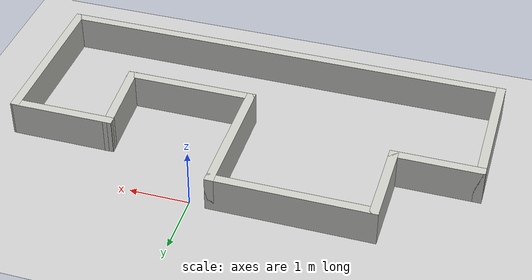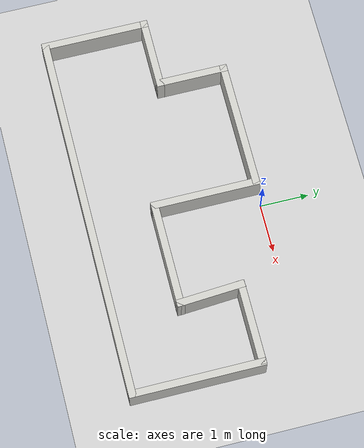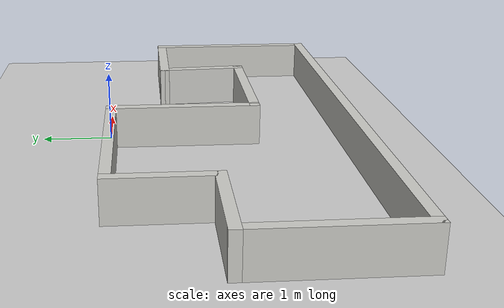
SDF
<sdf version="1.7">
 <world name="default">
  <light name="sun" type="directional">
   <pose>0 0 10 0 -0 0</pose>
   <diffuse>0.8 0.8 0.8 1</diffuse>
   <specular>0.2 0.2 0.2 1</specular>
   <attenuation>
    <range>1000</range>
    <constant>0.9</constant>
    <linear>0.01</linear>
    <quadratic>0.001</quadratic>
   </attenuation>
   <direction>-0.5 0.1 -0.9</direction>
   <spot><inner_angle>0</inner_angle><outer_angle>0</outer_angle><falloff>0</falloff></spot>
  </light>
  <model name="ground_plane">
   <static>1</static>
   <link name="link">
    <collision name="collision">
     <geometry><plane><normal>0 0 1</normal><size>100 100</size></plane></geometry>
     <surface>
      <contact><collide_bitmask>65535</collide_bitmask></contact>
      <friction><ode><mu>100</mu><mu2>50</mu2></ode></friction>
     </surface>
    </collision>
    <visual name="visual">
     <cast_shadows>0</cast_shadows>
     <geometry><plane><normal>0 0 1</normal><size>100 100</size></plane></geometry>
     <material>
      <script><uri>file://media/materials/scripts/gazebo.material</uri><name>Gazebo/Grey</name></script>
     </material>
    </visual>
   </link>
  </model>
  <gravity>0 0 -9.8</gravity>
  <magnetic_field>6e-06 2.3e-05 -4.2e-05</magnetic_field>
  <atmosphere type="adiabatic"/>
  <physics type="ode">
   <max_step_size>0.001</max_step_size>
   <real_time_factor>1</real_time_factor>
   <real_time_update_rate>1000</real_time_update_rate>
  </physics>
  <scene><ambient>0.4 0.4 0.4 1</ambient><background>0.7 0.7 0.7 1</background><shadows>1</shadows></scene>
  <audio><device>default</device></audio>
  <spherical_coordinates>
   <surface_model>EARTH_WGS84</surface_model>
   <latitude_deg>0</latitude_deg>
   <longitude_deg>0</longitude_deg>
   <elevation>0</elevation>
   <heading_deg>0</heading_deg>
  </spherical_coordinates>
  <model name="Group3_custom">
   <pose>-0.490112 -1.755 0 0 -0 0</pose>
   <link name="Wall_0">
    <collision name="Wall_0_Collision">
     <geometry><box><size>2.25 0.15 0.6</size></box></geometry>
     <pose>0 0 0.3 0 -0 0</pose>
    </collision>
    <visual name="Wall_0_Visual">
     <pose>0 0 0.3 0 -0 0</pose>
     <geometry><box><size>2.25 0.15 0.6</size></box></geometry>
     <material>
      <script><uri>file://media/materials/scripts/gazebo.material</uri><name>Gazebo/CeilingTiled</name></script>
      <ambient>1 1 1 1</ambient>
     </material>
     <meta><layer>0</layer></meta>
    </visual>
    <pose>-3.79989 -0.675 0 0 -0 -1.5708</pose>
   </link>
   <link name="Wall_1">
    <collision name="Wall_1_Collision">
     <geometry><box><size>7.75 0.15 0.6</size></box></geometry>
     <pose>0 0 0.3 0 -0 0</pose>
    </collision>
    <visual name="Wall_1_Visual">
     <pose>0 0 0.3 0 -0 0</pose>
     <geometry><box><size>7.75 0.15 0.6</size></box></geometry>
     <material>
      <script><uri>file://media/materials/scripts/gazebo.material</uri><name>Gazebo/CeilingTiled</name></script>
      <ambient>1 1 1 1</ambient>
     </material>
     <meta><layer>0</layer></meta>
    </visual>
    <pose>0.000112 -1.725 0 0 -0 0</pose>
   </link>
   <link name="Wall_10">
    <collision name="Wall_10_Collision">
     <geometry><box><size>1.75 0.15 0.6</size></box></geometry>
     <pose>0 0 0.3 0 -0 0</pose>
    </collision>
    <visual name="Wall_10_Visual">
     <pose>0 0 0.3 0 -0 0</pose>
     <geometry><box><size>1.75 0.15 0.6</size></box></geometry>
     <material>
      <script><uri>file://media/materials/scripts/gazebo.material</uri><name>Gazebo/CeilingTiled</name></script>
      <ambient>1 1 1 1</ambient>
     </material>
     <meta><layer>0</layer></meta>
    </visual>
    <pose>2.97111 0.88 0 0 -0 0</pose>
   </link>
   <link name="Wall_2">
    <collision name="Wall_2_Collision">
     <geometry><box><size>2.75 0.15 0.6</size></box></geometry>
     <pose>0 0 0.3 0 -0 0</pose>
    </collision>
    <visual name="Wall_2_Visual">
     <pose>0 0 0.3 0 -0 0</pose>
     <geometry><box><size>2.75 0.15 0.6</size></box></geometry>
     <material>
      <script><uri>file://media/materials/scripts/gazebo.material</uri><name>Gazebo/CeilingTiled</name></script>
      <ambient>1 1 1 1</ambient>
     </material>
     <meta><layer>0</layer></meta>
    </visual>
    <pose>3.80011 -0.425 0 0 -0 1.5708</pose>
   </link>
   <link name="Wall_4">
    <collision name="Wall_4_Collision">
     <geometry><box><size>1.52645 0.15 0.6</size></box></geometry>
     <pose>0 0 0.3 0 -0 0</pose>
    </collision>
    <visual name="Wall_4_Visual">
     <pose>0 0 0.3 0 -0 0</pose>
     <geometry><box><size>1.52645 0.15 0.6</size></box></geometry>
     <material>
      <script><uri>file://media/materials/scripts/gazebo.material</uri><name>Gazebo/CeilingTiled</name></script>
      <ambient>1 1 1 1</ambient>
     </material>
     <meta><layer>0</layer></meta>
    </visual>
    <pose>-3.11189 0.375 0 0 -0 0</pose>
   </link>
   <link name="Wall_5">
    <collision name="Wall_5_Collision">
     <geometry><box><size>1.5 0.15 0.6</size></box></geometry>
     <pose>0 0 0.3 0 -0 0</pose>
    </collision>
    <visual name="Wall_5_Visual">
     <pose>0 0 0.3 0 -0 0</pose>
     <geometry><box><size>1.5 0.15 0.6</size></box></geometry>
     <material>
      <script><uri>file://media/materials/scripts/gazebo.material</uri><name>Gazebo/CeilingTiled</name></script>
      <ambient>1 1 1 1</ambient>
     </material>
     <meta><layer>0</layer></meta>
    </visual>
    <pose>-2.42389 1.05 0 0 -0 1.5708</pose>
   </link>
   <link name="Wall_6">
    <collision name="Wall_6_Collision">
     <geometry><box><size>2.72355 0.15 0.6</size></box></geometry>
     <pose>0 0 0.3 0 -0 0</pose>
    </collision>
    <visual name="Wall_6_Visual">
     <pose>0 0 0.3 0 -0 0</pose>
     <geometry><box><size>2.72355 0.15 0.6</size></box></geometry>
     <material>
      <script><uri>file://media/materials/scripts/gazebo.material</uri><name>Gazebo/CeilingTiled</name></script>
      <ambient>1 1 1 1</ambient>
     </material>
     <meta><layer>0</layer></meta>
    </visual>
    <pose>-1.13689 1.725 0 0 -0 0</pose>
   </link>
   <link name="Wall_7">
    <collision name="Wall_7_Collision">
     <geometry><box><size>2.25 0.15 0.6</size></box></geometry>
     <pose>0 0 0.3 0 -0 0</pose>
    </collision>
    <visual name="Wall_7_Visual">
     <pose>0 0 0.3 0 -0 0</pose>
     <geometry><box><size>2.25 0.15 0.6</size></box></geometry>
     <material>
      <script><uri>file://media/materials/scripts/gazebo.material</uri><name>Gazebo/CeilingTiled</name></script>
      <ambient>1 1 1 1</ambient>
     </material>
     <meta><layer>0</layer></meta>
    </visual>
    <pose>0.150112 0.675 0 0 -0 -1.5708</pose>
   </link>
   <link name="Wall_8">
    <collision name="Wall_8_Collision">
     <geometry><box><size>2.25 0.15 0.6</size></box></geometry>
     <pose>0 0 0.3 0 -0 0</pose>
    </collision>
    <visual name="Wall_8_Visual">
     <pose>0 0 0.3 0 -0 0</pose>
     <geometry><box><size>2.25 0.15 0.6</size></box></geometry>
     <material>
      <script><uri>file://media/materials/scripts/gazebo.material</uri><name>Gazebo/CeilingTiled</name></script>
      <ambient>1 1 1 1</ambient>
     </material>
     <meta><layer>0</layer></meta>
    </visual>
    <pose>1.20011 -0.375 0 0 -0 0</pose>
   </link>
   <link name="Wall_9">
    <collision name="Wall_9_Collision">
     <geometry><box><size>1.40748 0.15 0.6</size></box></geometry>
     <pose>0 0 0.3 0 -0 0</pose>
    </collision>
    <visual name="Wall_9_Visual">
     <pose>0 0 0.3 0 -0 0</pose>
     <geometry><box><size>1.40748 0.15 0.6</size></box></geometry>
     <material>
      <script><uri>file://media/materials/scripts/gazebo.material</uri><name>Gazebo/CeilingTiled</name></script>
      <ambient>1 1 1 1</ambient>
     </material>
     <meta><layer>0</layer></meta>
    </visual>
    <pose>2.21061 0.2525 0 0 -0 1.63366</pose>
   </link>
   <static>1</static>
  </model>
  <light name="user_spot_light_0" type="spot">
   <pose>-1.8206 -0.857892 1 0 -0 0</pose>
   <diffuse>0.5 0.5 0.5 1</diffuse>
   <specular>0.1 0.1 0.1 1</specular>
   <direction>0 0 -1</direction>
   <attenuation>
    <range>20</range>
    <constant>0.5</constant>
    <linear>0.01</linear>
    <quadratic>0.001</quadratic>
   </attenuation>
   <cast_shadows>0</cast_shadows>
   <spot><inner_angle>0.6</inner_angle><outer_angle>1</outer_angle><falloff>1</falloff></spot>
  </light>
  <light name="user_spot_light_1" type="spot">
   <pose>2.432 -2.49235 1 0 -0 0</pose>
   <diffuse>0.5 0.5 0.5 1</diffuse>
   <specular>0.1 0.1 0.1 1</specular>
   <direction>0 0 -1</direction>
   <attenuation>
    <range>20</range>
    <constant>0.5</constant>
    <linear>0.01</linear>
    <quadratic>0.001</quadratic>
   </attenuation>
   <cast_shadows>0</cast_shadows>
   <spot><inner_angle>0.6</inner_angle><outer_angle>1</outer_angle><falloff>1</falloff></spot>
  </light>
  <light name="user_spot_light_2" type="spot">
   <pose>-3.00382 -2.21899 1 0 -0 0</pose>
   <diffuse>0.5 0.5 0.5 1</diffuse>
   <specular>0.1 0.1 0.1 1</specular>
   <direction>0 0 -1</direction>
   <attenuation>
    <range>20</range>
    <constant>0.5</constant>
    <linear>0.01</linear>
    <quadratic>0.001</quadratic>
   </attenuation>
   <cast_shadows>0</cast_shadows>
   <spot><inner_angle>0.6</inner_angle><outer_angle>1</outer_angle><falloff>1</falloff></spot>
  </light>
 </world>
</sdf>
